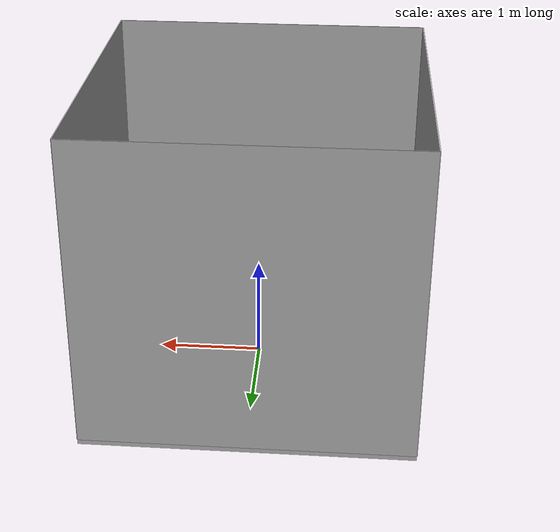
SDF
<?xml version="1.0"?>
<sdf version="1.6">
  <world name="default">
    <physics type="ode">
      <gravity>0 0 0.0</gravity>
      <max_step_size>0.001</max_step_size>
    </physics>

    <model name="box">
      <pose>0.0 0.0 0.1 0 0 0</pose>
      <static>false</static>
      <link name="link">
        <inertial>
          <mass>1.0</mass>
          <inertia>
            <ixx>0.00664</ixx>
            <ixy>0.0</ixy>
            <ixz>0.0</ixz>
            <iyy>0.00664</iyy>
            <iyz>0.0</iyz>
            <izz>0.00664</izz>
          </inertia>
        </inertial>
        <collision name="box_collision">
          <surface>
            <contact>
              <collide_bitmask>0x01</collide_bitmask>
            </contact>
            <friction>
              <ode>
                <mu>100</mu>
                <mu2>50</mu2>
              </ode>
            </friction>
          </surface>
          <geometry>
            <box>
              <size>0.2 0.2 0.2</size>
            </box>
          </geometry>
        </collision>
        <visual name="box_visual">
          <geometry>
            <box>
              <size>0.2 0.2 0.2</size>
            </box>
          </geometry>
        </visual>
      </link>
    </model>

    <model name="biorob_pool">
      <static>true</static>
      <pose>0.0 0.0 -0.05 0.0 0.0 0.0</pose>
      <link name="floor">
        <static>true</static>
        <pose>0.0 0.0 0.0 0.0 0.0 0.0</pose>
        <inertial>
          <pose>0.0 0.0 0.0 0.0 0.0 0.0</pose>
          <mass>0</mass>
          <inertia>
            <ixx>0.0</ixx>
            <ixy>0</ixy>
            <ixz>0</ixz>
            <iyy>0.0</iyy>
            <iyz>0</iyz>
            <izz>0.0</izz>
          </inertia>
        </inertial>
        <collision name="floor_collision">
          <pose>0.0 0.0 0.0 0.0 0.0 0.0</pose>
          <geometry>
            <box>
              <size>3.1 3.1 0.1</size>
            </box>
          </geometry>
        </collision>
        <visual name="floor_visual">
          <pose>0.0 0.0 0.0 0.0 0.0 0.0</pose>
          <geometry>
            <box>
              <size>3.1 3.1 0.1</size>
            </box>
          </geometry>
          <material />
        </visual>
      </link>
      <link name="side_x_0">
        <static>true</static>
        <pose>-1.5505 0.0 1.5 0.0 0.0 0.0</pose>
        <inertial>
          <pose>0.0 0.0 0.0 0.0 0.0 0.0</pose>
          <mass>0</mass>
          <inertia>
            <ixx>0.0</ixx>
            <ixy>0</ixy>
            <ixz>0</ixz>
            <iyy>0.0</iyy>
            <iyz>0</iyz>
            <izz>0.0</izz>
          </inertia>
        </inertial>
        <collision name="side_x_0_collision">
          <pose>0.0 0.0 0.0 0.0 0.0 0.0</pose>
          <geometry>
            <box>
              <size>0.01 3.1 3</size>
            </box>
          </geometry>
        </collision>
        <visual name="side_x_0_visual">
          <pose>0.0 0.0 0.0 0.0 0.0 0.0</pose>
          <geometry>
            <box>
              <size>0.01 3.1 3</size>
            </box>
          </geometry>
          <material />
        </visual>
      </link>
      <link name="side_x_1">
        <static>true</static>
        <pose>1.5505 0.0 1.5 0.0 0.0 0.0</pose>
        <inertial>
          <pose>0.0 0.0 0.0 0.0 0.0 0.0</pose>
          <mass>0</mass>
          <inertia>
            <ixx>0.0</ixx>
            <ixy>0</ixy>
            <ixz>0</ixz>
            <iyy>0.0</iyy>
            <iyz>0</iyz>
            <izz>0.0</izz>
          </inertia>
        </inertial>
        <collision name="side_x_1_collision">
          <pose>0.0 0.0 0.0 0.0 0.0 0.0</pose>
          <geometry>
            <box>
              <size>0.01 3.1 3</size>
            </box>
          </geometry>
        </collision>
        <visual name="side_x_1_visual">
          <pose>0.0 0.0 0.0 0.0 0.0 0.0</pose>
          <geometry>
            <box>
              <size>0.01 3.1 3</size>
            </box>
          </geometry>
          <material />
        </visual>
      </link>
      <link name="side_y_0">
        <static>true</static>
        <pose>0.0 1.5505 1.5 0.0 0.0 0.0</pose>
        <inertial>
          <pose>0.0 0.0 0.0 0.0 0.0 0.0</pose>
          <mass>0</mass>
          <inertia>
            <ixx>0.0</ixx>
            <ixy>0</ixy>
            <ixz>0</ixz>
            <iyy>0.0</iyy>
            <iyz>0</iyz>
            <izz>0.0</izz>
          </inertia>
        </inertial>
        <collision name="side_y_0_collision">
          <pose>0.0 0.0 0.0 0.0 0.0 0.0</pose>
          <geometry>
            <box>
              <size>3.1 0.01 3</size>
            </box>
          </geometry>
        </collision>
        <visual name="side_y_0_visual">
          <pose>0.0 0.0 0.0 0.0 0.0 0.0</pose>
          <geometry>
            <box>
              <size>3.1 0.01 3</size>
            </box>
          </geometry>
          <material />
        </visual>
      </link>
      <link name="side_y_1">
        <static>true</static>
        <pose>0.0 -1.5505 1.5 0.0 0.0 0.0</pose>
        <inertial>
          <pose>0.0 0.0 0.0 0.0 0.0 0.0</pose>
          <mass>0</mass>
          <inertia>
            <ixx>0.0</ixx>
            <ixy>0</ixy>
            <ixz>0</ixz>
            <iyy>0.0</iyy>
            <iyz>0</iyz>
            <izz>0.0</izz>
          </inertia>
        </inertial>
        <collision name="side_y_1_collision">
          <pose>0.0 0.0 0.0 0.0 0.0 0.0</pose>
          <geometry>
            <box>
              <size>3.1 0.01 3</size>
            </box>
          </geometry>
        </collision>
        <visual name="side_y_1_visual">
          <pose>0.0 0.0 0.0 0.0 0.0 0.0</pose>
          <geometry>
            <box>
              <size>3.1 0.01 3</size>
            </box>
          </geometry>
          <material />
        </visual>
      </link>
    </model>
    <plugin name="FluidPlugin" filename="libFluidSimulator.so">
      <fluidConfiguration>
        <timeStepSize>0.001</timeStepSize>
        <particleRadius>0.025</particleRadius>
        <simulationMethod>4</simulationMethod>
        <gravitation>0 0 -9.81</gravitation>
        <cflMethod>0</cflMethod>
        <cflFactor>0.45</cflFactor>
        <cflMaxTimeStepSize>0.01</cflMaxTimeStepSize>
        <maxIterations>100</maxIterations>
        <maxError>0.05</maxError>
        <maxIterationsV>100</maxIterationsV>
        <maxErrorV>0.1</maxErrorV>
        <stiffness>50000</stiffness>
        <exponent>7</exponent>
        <enableDivergenceSolver>true</enableDivergenceSolver>
        <velocityUpdateMethod>0</velocityUpdateMethod>
        <boundaryHandlingMethod>0</boundaryHandlingMethod>
        <outputPath>/home/ismael/Sim_out/</outputPath>
      </fluidConfiguration>
      <fluid>
        <viscosity>0.01</viscosity>
        <viscosityMethod>1</viscosityMethod>
      </fluid>
     <fluidBlock>
        <denseMode>0</denseMode>
        <start>-1.5 -1.5 0.0</start>
        <end>-0.8 -0.8 1.75</end>
      </fluidBlock>
    </plugin>
  </world>
</sdf>
